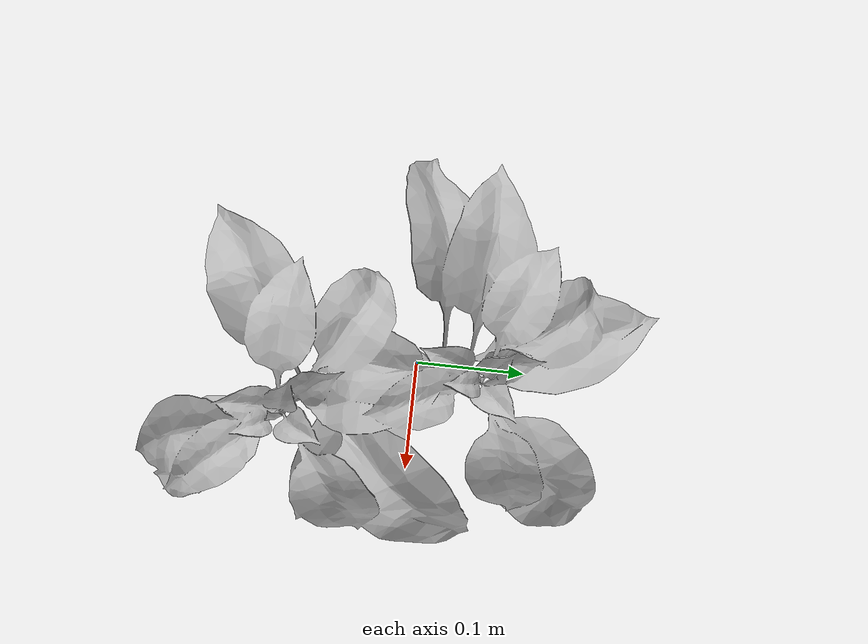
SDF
<?xml version='1.0'?>
<sdf version='1.6'>
  <model name='capsicum_plant_1'>
    <link name='link_capsicum_plant_1'>
       <visual name='visual'>
        <pose frame=''>0 0 0 0 0 0</pose>
        <geometry>
          <mesh>
            <uri>model://capsicum_plant_1/meshes/VG07_1.dae</uri>
          </mesh>
        </geometry>
      </visual>
    </link>
    <static>1</static>
  </model>
</sdf>
